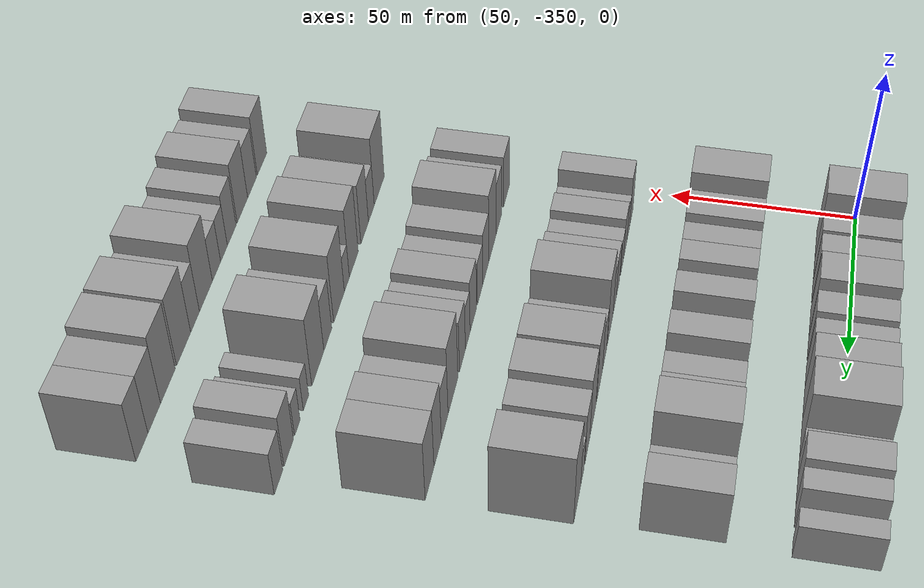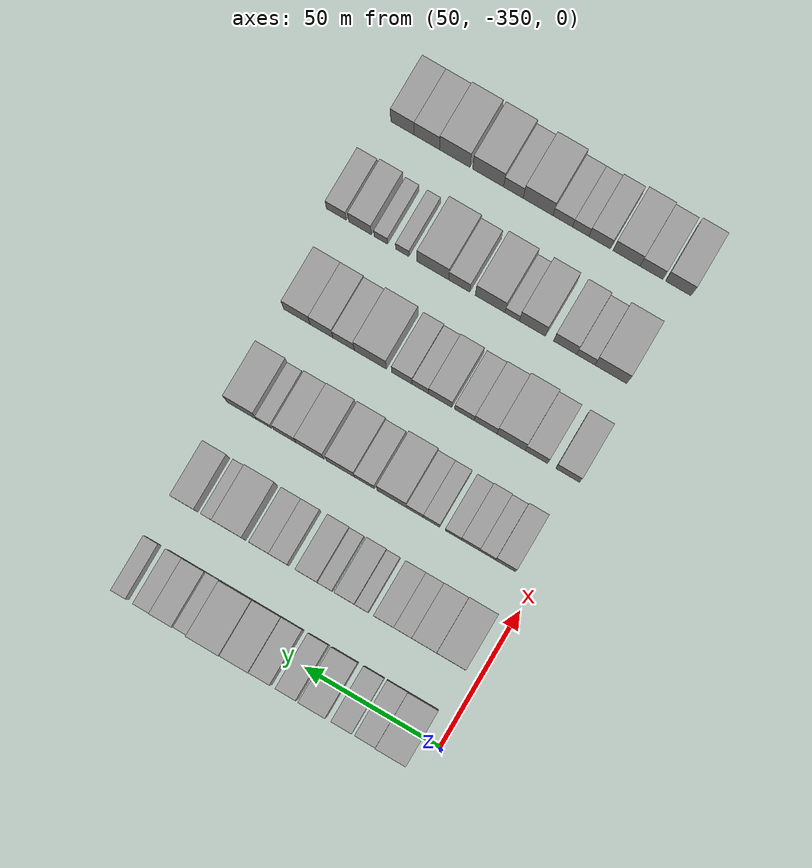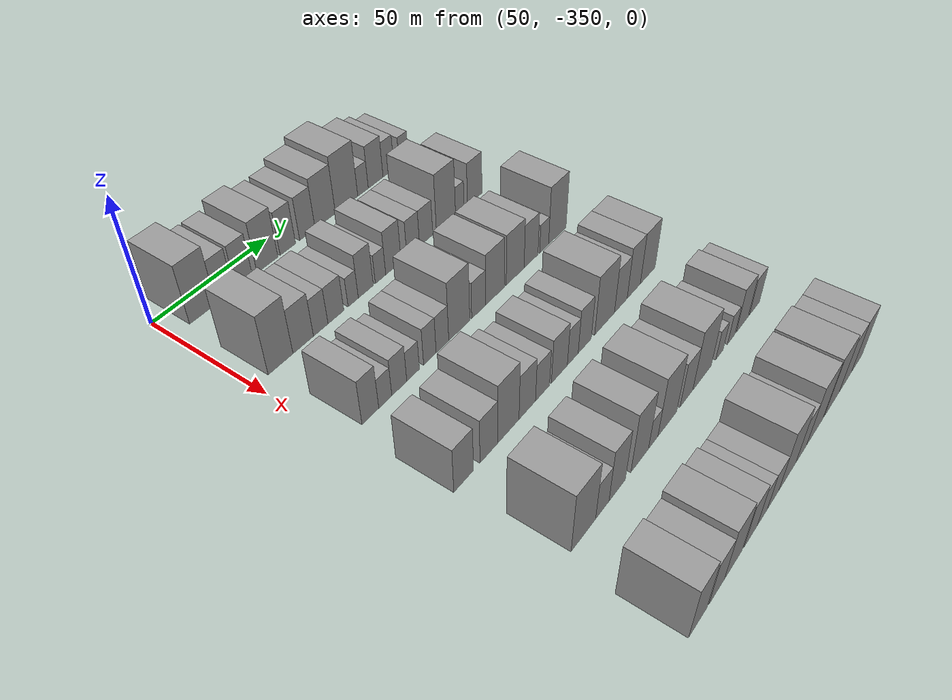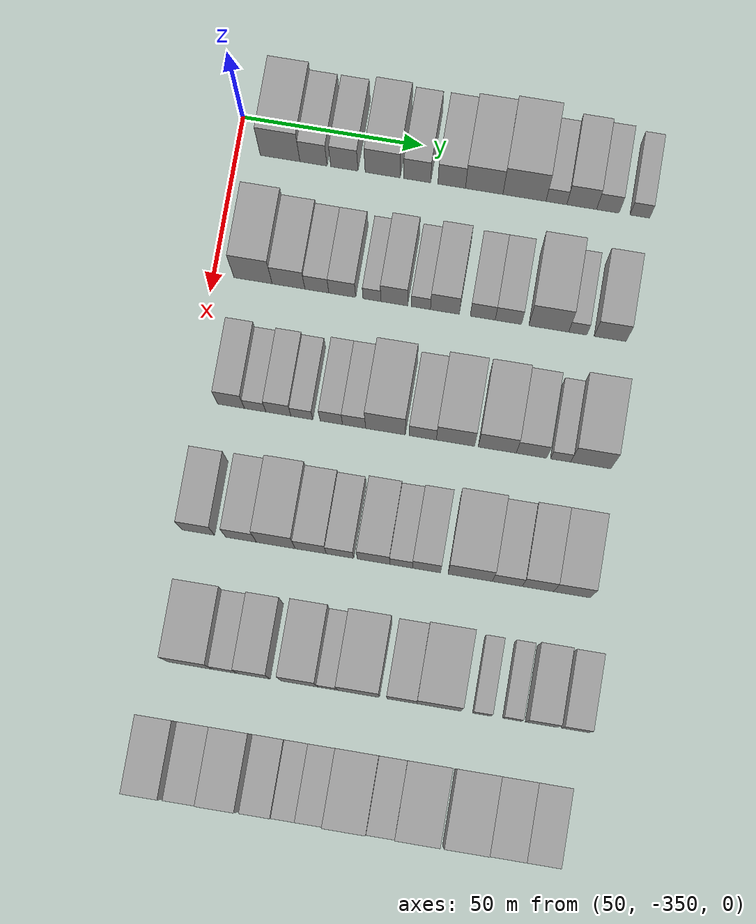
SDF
<sdf version="1.6">
 <world name="default">
  <model name="building_22">
   <static>1</static>
   <pose>50.0000 -337.8677 0 0.000000 0.000000 0.000000</pose>
   <link name="link">
    <pose>0 0 12.00 0 0 0</pose>
    <collision name="collision"><geometry><box><size>20.0000 11.0014 24.0000</size></box></geometry></collision>
    <visual name="visual">
     <cast_shadows>0</cast_shadows>
     <geometry><box><size>20.0000 11.0014 24.0000</size></box></geometry>
     <material>
      <script>
       <uri>model://grey_wall/materials/scripts</uri>
       <uri>model://grey_wall/materials/textures</uri>
       <name>vrc/grey_wall</name>
      </script>
     </material>
    </visual>
   </link>
  </model>
  <model name="building_23">
   <static>1</static>
   <pose>50.0000 -328.5939 0 0.000000 0.000000 0.000000</pose>
   <link name="link">
    <pose>0 0 9.00 0 0 0</pose>
    <collision name="collision"><geometry><box><size>20.0000 7.5461 18.0000</size></box></geometry></collision>
    <visual name="visual">
     <cast_shadows>0</cast_shadows>
     <geometry><box><size>20.0000 7.5461 18.0000</size></box></geometry>
     <material>
      <script>
       <uri>model://grey_wall/materials/scripts</uri>
       <uri>model://grey_wall/materials/textures</uri>
       <name>vrc/grey_wall</name>
      </script>
     </material>
    </visual>
   </link>
  </model>
  <model name="building_24">
   <static>1</static>
   <pose>50.0000 -320.0432 0 0.000000 0.000000 0.000000</pose>
   <link name="link">
    <pose>0 0 9.00 0 0 0</pose>
    <collision name="collision"><geometry><box><size>20.0000 7.5552 18.0000</size></box></geometry></collision>
    <visual name="visual">
     <cast_shadows>0</cast_shadows>
     <geometry><box><size>20.0000 7.5552 18.0000</size></box></geometry>
     <material>
      <script>
       <uri>model://grey_wall/materials/scripts</uri>
       <uri>model://grey_wall/materials/textures</uri>
       <name>vrc/grey_wall</name>
      </script>
     </material>
    </visual>
   </link>
  </model>
  <model name="building_25">
   <static>1</static>
   <pose>50.0000 -309.4065 0 0.000000 0.000000 0.000000</pose>
   <link name="link">
    <pose>0 0 10.50 0 0 0</pose>
    <collision name="collision"><geometry><box><size>20.0000 9.7182 21.0000</size></box></geometry></collision>
    <visual name="visual">
     <cast_shadows>0</cast_shadows>
     <geometry><box><size>20.0000 9.7182 21.0000</size></box></geometry>
     <material>
      <script>
       <uri>model://grey_wall/materials/scripts</uri>
       <uri>model://grey_wall/materials/textures</uri>
       <name>vrc/grey_wall</name>
      </script>
     </material>
    </visual>
   </link>
  </model>
  <model name="building_26">
   <static>1</static>
   <pose>50.0000 -299.8369 0 0.000000 0.000000 0.000000</pose>
   <link name="link">
    <pose>0 0 9.00 0 0 0</pose>
    <collision name="collision"><geometry><box><size>20.0000 7.4212 18.0000</size></box></geometry></collision>
    <visual name="visual">
     <cast_shadows>0</cast_shadows>
     <geometry><box><size>20.0000 7.4212 18.0000</size></box></geometry>
     <material>
      <script>
       <uri>model://grey_wall/materials/scripts</uri>
       <uri>model://grey_wall/materials/textures</uri>
       <name>vrc/grey_wall</name>
      </script>
     </material>
    </visual>
   </link>
  </model>
  <model name="building_27">
   <static>1</static>
   <pose>50.0000 -290.3127 0 0.000000 0.000000 0.000000</pose>
   <link name="link">
    <pose>0 0 9.00 0 0 0</pose>
    <collision name="collision"><geometry><box><size>20.0000 7.6271 18.0000</size></box></geometry></collision>
    <visual name="visual">
     <cast_shadows>0</cast_shadows>
     <geometry><box><size>20.0000 7.6271 18.0000</size></box></geometry>
     <material>
      <script>
       <uri>model://grey_wall/materials/scripts</uri>
       <uri>model://grey_wall/materials/textures</uri>
       <name>vrc/grey_wall</name>
      </script>
     </material>
    </visual>
   </link>
  </model>
  <model name="building_28">
   <static>1</static>
   <pose>50.0000 -281.3289 0 0.000000 0.000000 0.000000</pose>
   <link name="link">
    <pose>0 0 10.50 0 0 0</pose>
    <collision name="collision"><geometry><box><size>20.0000 10.3405 21.0000</size></box></geometry></collision>
    <visual name="visual">
     <cast_shadows>0</cast_shadows>
     <geometry><box><size>20.0000 10.3405 21.0000</size></box></geometry>
     <material>
      <script>
       <uri>model://grey_wall/materials/scripts</uri>
       <uri>model://grey_wall/materials/textures</uri>
       <name>vrc/grey_wall</name>
      </script>
     </material>
    </visual>
   </link>
  </model>
  <model name="building_29">
   <static>1</static>
   <pose>50.0000 -270.2084 0 0.000000 0.000000 0.000000</pose>
   <link name="link">
    <pose>0 0 12.00 0 0 0</pose>
    <collision name="collision"><geometry><box><size>20.0000 11.9004 24.0000</size></box></geometry></collision>
    <visual name="visual">
     <cast_shadows>0</cast_shadows>
     <geometry><box><size>20.0000 11.9004 24.0000</size></box></geometry>
     <material>
      <script>
       <uri>model://grey_wall/materials/scripts</uri>
       <uri>model://grey_wall/materials/textures</uri>
       <name>vrc/grey_wall</name>
      </script>
     </material>
    </visual>
   </link>
  </model>
  <model name="building_30">
   <static>1</static>
   <pose>50.0000 -261.3964 0 0.000000 0.000000 0.000000</pose>
   <link name="link">
    <pose>0 0 6.00 0 0 0</pose>
    <collision name="collision"><geometry><box><size>20.0000 5.7237 12.0000</size></box></geometry></collision>
    <visual name="visual">
     <cast_shadows>0</cast_shadows>
     <geometry><box><size>20.0000 5.7237 12.0000</size></box></geometry>
     <material>
      <script>
       <uri>model://grey_wall/materials/scripts</uri>
       <uri>model://grey_wall/materials/textures</uri>
       <name>vrc/grey_wall</name>
      </script>
     </material>
    </visual>
   </link>
  </model>
  <model name="building_31">
   <static>1</static>
   <pose>50.0000 -254.4233 0 0.000000 0.000000 0.000000</pose>
   <link name="link">
    <pose>0 0 9.00 0 0 0</pose>
    <collision name="collision"><geometry><box><size>20.0000 8.2224 18.0000</size></box></geometry></collision>
    <visual name="visual">
     <cast_shadows>0</cast_shadows>
     <geometry><box><size>20.0000 8.2224 18.0000</size></box></geometry>
     <material>
      <script>
       <uri>model://grey_wall/materials/scripts</uri>
       <uri>model://grey_wall/materials/textures</uri>
       <name>vrc/grey_wall</name>
      </script>
     </material>
    </visual>
   </link>
  </model>
  <model name="building_32">
   <static>1</static>
   <pose>50.0000 -247.2109 0 0.000000 0.000000 0.000000</pose>
   <link name="link">
    <pose>0 0 7.50 0 0 0</pose>
    <collision name="collision"><geometry><box><size>20.0000 6.2025 15.0000</size></box></geometry></collision>
    <visual name="visual">
     <cast_shadows>0</cast_shadows>
     <geometry><box><size>20.0000 6.2025 15.0000</size></box></geometry>
     <material>
      <script>
       <uri>model://grey_wall/materials/scripts</uri>
       <uri>model://grey_wall/materials/textures</uri>
       <name>vrc/grey_wall</name>
      </script>
     </material>
    </visual>
   </link>
  </model>
  <model name="building_33">
   <static>1</static>
   <pose>50.0000 -238.4024 0 0.000000 0.000000 0.000000</pose>
   <link name="link">
    <pose>0 0 6.00 0 0 0</pose>
    <collision name="collision"><geometry><box><size>20.0000 5.4144 12.0000</size></box></geometry></collision>
    <visual name="visual">
     <cast_shadows>0</cast_shadows>
     <geometry><box><size>20.0000 5.4144 12.0000</size></box></geometry>
     <material>
      <script>
       <uri>model://grey_wall/materials/scripts</uri>
       <uri>model://grey_wall/materials/textures</uri>
       <name>vrc/grey_wall</name>
      </script>
     </material>
    </visual>
   </link>
  </model>
  <model name="building_144">
   <static>1</static>
   <pose>85.0000 -339.1189 0 0.000000 0.000000 0.000000</pose>
   <link name="link">
    <pose>0 0 12.00 0 0 0</pose>
    <collision name="collision"><geometry><box><size>20.0000 10.5313 24.0000</size></box></geometry></collision>
    <visual name="visual">
     <cast_shadows>0</cast_shadows>
     <geometry><box><size>20.0000 10.5313 24.0000</size></box></geometry>
     <material>
      <script>
       <uri>model://grey_wall/materials/scripts</uri>
       <uri>model://grey_wall/materials/textures</uri>
       <name>vrc/grey_wall</name>
      </script>
     </material>
    </visual>
   </link>
  </model>
  <model name="building_145">
   <static>1</static>
   <pose>85.0000 -329.3555 0 0.000000 0.000000 0.000000</pose>
   <link name="link">
    <pose>0 0 9.00 0 0 0</pose>
    <collision name="collision"><geometry><box><size>20.0000 8.9957 18.0000</size></box></geometry></collision>
    <visual name="visual">
     <cast_shadows>0</cast_shadows>
     <geometry><box><size>20.0000 8.9957 18.0000</size></box></geometry>
     <material>
      <script>
       <uri>model://grey_wall/materials/scripts</uri>
       <uri>model://grey_wall/materials/textures</uri>
       <name>vrc/grey_wall</name>
      </script>
     </material>
    </visual>
   </link>
  </model>
  <model name="building_146">
   <static>1</static>
   <pose>85.0000 -321.5730 0 0.000000 0.000000 0.000000</pose>
   <link name="link">
    <pose>0 0 7.50 0 0 0</pose>
    <collision name="collision"><geometry><box><size>20.0000 6.5692 15.0000</size></box></geometry></collision>
    <visual name="visual">
     <cast_shadows>0</cast_shadows>
     <geometry><box><size>20.0000 6.5692 15.0000</size></box></geometry>
     <material>
      <script>
       <uri>model://grey_wall/materials/scripts</uri>
       <uri>model://grey_wall/materials/textures</uri>
       <name>vrc/grey_wall</name>
      </script>
     </material>
    </visual>
   </link>
  </model>
  <model name="building_147">
   <static>1</static>
   <pose>85.0000 -314.5998 0 0.000000 0.000000 0.000000</pose>
   <link name="link">
    <pose>0 0 7.50 0 0 0</pose>
    <collision name="collision"><geometry><box><size>20.0000 7.3772 15.0000</size></box></geometry></collision>
    <visual name="visual">
     <cast_shadows>0</cast_shadows>
     <geometry><box><size>20.0000 7.3772 15.0000</size></box></geometry>
     <material>
      <script>
       <uri>model://grey_wall/materials/scripts</uri>
       <uri>model://grey_wall/materials/textures</uri>
       <name>vrc/grey_wall</name>
      </script>
     </material>
    </visual>
   </link>
  </model>
  <model name="building_148">
   <static>1</static>
   <pose>85.0000 -306.4598 0 0.000000 0.000000 0.000000</pose>
   <link name="link">
    <pose>0 0 6.00 0 0 0</pose>
    <collision name="collision"><geometry><box><size>20.0000 4.9028 12.0000</size></box></geometry></collision>
    <visual name="visual">
     <cast_shadows>0</cast_shadows>
     <geometry><box><size>20.0000 4.9028 12.0000</size></box></geometry>
     <material>
      <script>
       <uri>model://grey_wall/materials/scripts</uri>
       <uri>model://grey_wall/materials/textures</uri>
       <name>vrc/grey_wall</name>
      </script>
     </material>
    </visual>
   </link>
  </model>
  <model name="building_149">
   <static>1</static>
   <pose>85.0000 -300.3460 0 0.000000 0.000000 0.000000</pose>
   <link name="link">
    <pose>0 0 9.00 0 0 0</pose>
    <collision name="collision"><geometry><box><size>20.0000 7.3248 18.0000</size></box></geometry></collision>
    <visual name="visual">
     <cast_shadows>0</cast_shadows>
     <geometry><box><size>20.0000 7.3248 18.0000</size></box></geometry>
     <material>
      <script>
       <uri>model://grey_wall/materials/scripts</uri>
       <uri>model://grey_wall/materials/textures</uri>
       <name>vrc/grey_wall</name>
      </script>
     </material>
    </visual>
   </link>
  </model>
  <model name="building_150">
   <static>1</static>
   <pose>85.0000 -293.0568 0 0.000000 0.000000 0.000000</pose>
   <link name="link">
    <pose>0 0 6.00 0 0 0</pose>
    <collision name="collision"><geometry><box><size>20.0000 5.2536 12.0000</size></box></geometry></collision>
    <visual name="visual">
     <cast_shadows>0</cast_shadows>
     <geometry><box><size>20.0000 5.2536 12.0000</size></box></geometry>
     <material>
      <script>
       <uri>model://grey_wall/materials/scripts</uri>
       <uri>model://grey_wall/materials/textures</uri>
       <name>vrc/grey_wall</name>
      </script>
     </material>
    </visual>
   </link>
  </model>
  <model name="building_151">
   <static>1</static>
   <pose>85.0000 -286.4753 0 0.000000 0.000000 0.000000</pose>
   <link name="link">
    <pose>0 0 9.00 0 0 0</pose>
    <collision name="collision"><geometry><box><size>20.0000 7.9094 18.0000</size></box></geometry></collision>
    <visual name="visual">
     <cast_shadows>0</cast_shadows>
     <geometry><box><size>20.0000 7.9094 18.0000</size></box></geometry>
     <material>
      <script>
       <uri>model://grey_wall/materials/scripts</uri>
       <uri>model://grey_wall/materials/textures</uri>
       <name>vrc/grey_wall</name>
      </script>
     </material>
    </visual>
   </link>
  </model>
  <model name="building_152">
   <static>1</static>
   <pose>85.0000 -276.1182 0 0.000000 0.000000 0.000000</pose>
   <link name="link">
    <pose>0 0 7.50 0 0 0</pose>
    <collision name="collision"><geometry><box><size>20.0000 6.8048 15.0000</size></box></geometry></collision>
    <visual name="visual">
     <cast_shadows>0</cast_shadows>
     <geometry><box><size>20.0000 6.8048 15.0000</size></box></geometry>
     <material>
      <script>
       <uri>model://grey_wall/materials/scripts</uri>
       <uri>model://grey_wall/materials/textures</uri>
       <name>vrc/grey_wall</name>
      </script>
     </material>
    </visual>
   </link>
  </model>
  <model name="building_153">
   <static>1</static>
   <pose>85.0000 -269.1102 0 0.000000 0.000000 0.000000</pose>
   <link name="link">
    <pose>0 0 7.50 0 0 0</pose>
    <collision name="collision"><geometry><box><size>20.0000 7.2112 15.0000</size></box></geometry></collision>
    <visual name="visual">
     <cast_shadows>0</cast_shadows>
     <geometry><box><size>20.0000 7.2112 15.0000</size></box></geometry>
     <material>
      <script>
       <uri>model://grey_wall/materials/scripts</uri>
       <uri>model://grey_wall/materials/textures</uri>
       <name>vrc/grey_wall</name>
      </script>
     </material>
    </visual>
   </link>
  </model>
  <model name="building_154">
   <static>1</static>
   <pose>85.0000 -258.0696 0 0.000000 0.000000 0.000000</pose>
   <link name="link">
    <pose>0 0 12.00 0 0 0</pose>
    <collision name="collision"><geometry><box><size>20.0000 10.8700 24.0000</size></box></geometry></collision>
    <visual name="visual">
     <cast_shadows>0</cast_shadows>
     <geometry><box><size>20.0000 10.8700 24.0000</size></box></geometry>
     <material>
      <script>
       <uri>model://grey_wall/materials/scripts</uri>
       <uri>model://grey_wall/materials/textures</uri>
       <name>vrc/grey_wall</name>
      </script>
     </material>
    </visual>
   </link>
  </model>
  <model name="building_155">
   <static>1</static>
   <pose>85.0000 -250.1532 0 0.000000 0.000000 0.000000</pose>
   <link name="link">
    <pose>0 0 6.00 0 0 0</pose>
    <collision name="collision"><geometry><box><size>20.0000 4.9628 12.0000</size></box></geometry></collision>
    <visual name="visual">
     <cast_shadows>0</cast_shadows>
     <geometry><box><size>20.0000 4.9628 12.0000</size></box></geometry>
     <material>
      <script>
       <uri>model://grey_wall/materials/scripts</uri>
       <uri>model://grey_wall/materials/textures</uri>
       <name>vrc/grey_wall</name>
      </script>
     </material>
    </visual>
   </link>
  </model>
  <model name="building_156">
   <static>1</static>
   <pose>85.0000 -241.3069 0 0.000000 0.000000 0.000000</pose>
   <link name="link">
    <pose>0 0 9.00 0 0 0</pose>
    <collision name="collision"><geometry><box><size>20.0000 8.7300 18.0000</size></box></geometry></collision>
    <visual name="visual">
     <cast_shadows>0</cast_shadows>
     <geometry><box><size>20.0000 8.7300 18.0000</size></box></geometry>
     <material>
      <script>
       <uri>model://grey_wall/materials/scripts</uri>
       <uri>model://grey_wall/materials/textures</uri>
       <name>vrc/grey_wall</name>
      </script>
     </material>
    </visual>
   </link>
  </model>
  <model name="building_269">
   <static>1</static>
   <pose>120.0000 -338.8439 0 0.000000 0.000000 0.000000</pose>
   <link name="link">
    <pose>0 0 9.00 0 0 0</pose>
    <collision name="collision"><geometry><box><size>20.0000 7.3104 18.0000</size></box></geometry></collision>
    <visual name="visual">
     <cast_shadows>0</cast_shadows>
     <geometry><box><size>20.0000 7.3104 18.0000</size></box></geometry>
     <material>
      <script>
       <uri>model://grey_wall/materials/scripts</uri>
       <uri>model://grey_wall/materials/textures</uri>
       <name>vrc/grey_wall</name>
      </script>
     </material>
    </visual>
   </link>
  </model>
  <model name="building_270">
   <static>1</static>
   <pose>120.0000 -332.2670 0 0.000000 0.000000 0.000000</pose>
   <link name="link">
    <pose>0 0 6.00 0 0 0</pose>
    <collision name="collision"><geometry><box><size>20.0000 5.8434 12.0000</size></box></geometry></collision>
    <visual name="visual">
     <cast_shadows>0</cast_shadows>
     <geometry><box><size>20.0000 5.8434 12.0000</size></box></geometry>
     <material>
      <script>
       <uri>model://grey_wall/materials/scripts</uri>
       <uri>model://grey_wall/materials/textures</uri>
       <name>vrc/grey_wall</name>
      </script>
     </material>
    </visual>
   </link>
  </model>
  <model name="building_271">
   <static>1</static>
   <pose>120.0000 -325.9289 0 0.000000 0.000000 0.000000</pose>
   <link name="link">
    <pose>0 0 7.50 0 0 0</pose>
    <collision name="collision"><geometry><box><size>20.0000 6.8329 15.0000</size></box></geometry></collision>
    <visual name="visual">
     <cast_shadows>0</cast_shadows>
     <geometry><box><size>20.0000 6.8329 15.0000</size></box></geometry>
     <material>
      <script>
       <uri>model://grey_wall/materials/scripts</uri>
       <uri>model://grey_wall/materials/textures</uri>
       <name>vrc/grey_wall</name>
      </script>
     </material>
    </visual>
   </link>
  </model>
  <model name="building_272">
   <static>1</static>
   <pose>120.0000 -319.5433 0 0.000000 0.000000 0.000000</pose>
   <link name="link">
    <pose>0 0 6.00 0 0 0</pose>
    <collision name="collision"><geometry><box><size>20.0000 5.9383 12.0000</size></box></geometry></collision>
    <visual name="visual">
     <cast_shadows>0</cast_shadows>
     <geometry><box><size>20.0000 5.9383 12.0000</size></box></geometry>
     <material>
      <script>
       <uri>model://grey_wall/materials/scripts</uri>
       <uri>model://grey_wall/materials/textures</uri>
       <name>vrc/grey_wall</name>
      </script>
     </material>
    </visual>
   </link>
  </model>
  <model name="building_273">
   <static>1</static>
   <pose>120.0000 -311.5369 0 0.000000 0.000000 0.000000</pose>
   <link name="link">
    <pose>0 0 7.50 0 0 0</pose>
    <collision name="collision"><geometry><box><size>20.0000 6.0744 15.0000</size></box></geometry></collision>
    <visual name="visual">
     <cast_shadows>0</cast_shadows>
     <geometry><box><size>20.0000 6.0744 15.0000</size></box></geometry>
     <material>
      <script>
       <uri>model://grey_wall/materials/scripts</uri>
       <uri>model://grey_wall/materials/textures</uri>
       <name>vrc/grey_wall</name>
      </script>
     </material>
    </visual>
   </link>
  </model>
  <model name="building_274">
   <static>1</static>
   <pose>120.0000 -305.3656 0 0.000000 0.000000 0.000000</pose>
   <link name="link">
    <pose>0 0 7.50 0 0 0</pose>
    <collision name="collision"><geometry><box><size>20.0000 6.2682 15.0000</size></box></geometry></collision>
    <visual name="visual">
     <cast_shadows>0</cast_shadows>
     <geometry><box><size>20.0000 6.2682 15.0000</size></box></geometry>
     <material>
      <script>
       <uri>model://grey_wall/materials/scripts</uri>
       <uri>model://grey_wall/materials/textures</uri>
       <name>vrc/grey_wall</name>
      </script>
     </material>
    </visual>
   </link>
  </model>
  <model name="building_275">
   <static>1</static>
   <pose>120.0000 -296.8449 0 0.000000 0.000000 0.000000</pose>
   <link name="link">
    <pose>0 0 12.00 0 0 0</pose>
    <collision name="collision"><geometry><box><size>20.0000 10.7731 24.0000</size></box></geometry></collision>
    <visual name="visual">
     <cast_shadows>0</cast_shadows>
     <geometry><box><size>20.0000 10.7731 24.0000</size></box></geometry>
     <material>
      <script>
       <uri>model://grey_wall/materials/scripts</uri>
       <uri>model://grey_wall/materials/textures</uri>
       <name>vrc/grey_wall</name>
      </script>
     </material>
    </visual>
   </link>
  </model>
  <model name="building_276">
   <static>1</static>
   <pose>120.0000 -286.7524 0 0.000000 0.000000 0.000000</pose>
   <link name="link">
    <pose>0 0 7.50 0 0 0</pose>
    <collision name="collision"><geometry><box><size>20.0000 7.4118 15.0000</size></box></geometry></collision>
    <visual name="visual">
     <cast_shadows>0</cast_shadows>
     <geometry><box><size>20.0000 7.4118 15.0000</size></box></geometry>
     <material>
      <script>
       <uri>model://grey_wall/materials/scripts</uri>
       <uri>model://grey_wall/materials/textures</uri>
       <name>vrc/grey_wall</name>
      </script>
     </material>
    </visual>
   </link>
  </model>
  <model name="building_277">
   <static>1</static>
   <pose>120.0000 -277.8801 0 0.000000 0.000000 0.000000</pose>
   <link name="link">
    <pose>0 0 10.50 0 0 0</pose>
    <collision name="collision"><geometry><box><size>20.0000 10.3328 21.0000</size></box></geometry></collision>
    <visual name="visual">
     <cast_shadows>0</cast_shadows>
     <geometry><box><size>20.0000 10.3328 21.0000</size></box></geometry>
     <material>
      <script>
       <uri>model://grey_wall/materials/scripts</uri>
       <uri>model://grey_wall/materials/textures</uri>
       <name>vrc/grey_wall</name>
      </script>
     </material>
    </visual>
   </link>
  </model>
  <model name="building_278">
   <static>1</static>
   <pose>120.0000 -266.5598 0 0.000000 0.000000 0.000000</pose>
   <link name="link">
    <pose>0 0 10.50 0 0 0</pose>
    <collision name="collision"><geometry><box><size>20.0000 10.3079 21.0000</size></box></geometry></collision>
    <visual name="visual">
     <cast_shadows>0</cast_shadows>
     <geometry><box><size>20.0000 10.3079 21.0000</size></box></geometry>
     <material>
      <script>
       <uri>model://grey_wall/materials/scripts</uri>
       <uri>model://grey_wall/materials/textures</uri>
       <name>vrc/grey_wall</name>
      </script>
     </material>
    </visual>
   </link>
  </model>
  <model name="building_279">
   <static>1</static>
   <pose>120.0000 -257.2918 0 0.000000 0.000000 0.000000</pose>
   <link name="link">
    <pose>0 0 9.00 0 0 0</pose>
    <collision name="collision"><geometry><box><size>20.0000 8.2279 18.0000</size></box></geometry></collision>
    <visual name="visual">
     <cast_shadows>0</cast_shadows>
     <geometry><box><size>20.0000 8.2279 18.0000</size></box></geometry>
     <material>
      <script>
       <uri>model://grey_wall/materials/scripts</uri>
       <uri>model://grey_wall/materials/textures</uri>
       <name>vrc/grey_wall</name>
      </script>
     </material>
    </visual>
   </link>
  </model>
  <model name="building_280">
   <static>1</static>
   <pose>120.0000 -249.4496 0 0.000000 0.000000 0.000000</pose>
   <link name="link">
    <pose>0 0 6.00 0 0 0</pose>
    <collision name="collision"><geometry><box><size>20.0000 5.4565 12.0000</size></box></geometry></collision>
    <visual name="visual">
     <cast_shadows>0</cast_shadows>
     <geometry><box><size>20.0000 5.4565 12.0000</size></box></geometry>
     <material>
      <script>
       <uri>model://grey_wall/materials/scripts</uri>
       <uri>model://grey_wall/materials/textures</uri>
       <name>vrc/grey_wall</name>
      </script>
     </material>
    </visual>
   </link>
  </model>
  <model name="building_281">
   <static>1</static>
   <pose>120.0000 -241.2702 0 0.000000 0.000000 0.000000</pose>
   <link name="link">
    <pose>0 0 12.00 0 0 0</pose>
    <collision name="collision"><geometry><box><size>20.0000 10.9023 24.0000</size></box></geometry></collision>
    <visual name="visual">
     <cast_shadows>0</cast_shadows>
     <geometry><box><size>20.0000 10.9023 24.0000</size></box></geometry>
     <material>
      <script>
       <uri>model://grey_wall/materials/scripts</uri>
       <uri>model://grey_wall/materials/textures</uri>
       <name>vrc/grey_wall</name>
      </script>
     </material>
    </visual>
   </link>
  </model>
  <model name="building_389">
   <static>1</static>
   <pose>155.0000 -341.3673 0 0.000000 0.000000 0.000000</pose>
   <link name="link">
    <pose>0 0 9.00 0 0 0</pose>
    <collision name="collision"><geometry><box><size>20.0000 8.7994 18.0000</size></box></geometry></collision>
    <visual name="visual">
     <cast_shadows>0</cast_shadows>
     <geometry><box><size>20.0000 8.7994 18.0000</size></box></geometry>
     <material>
      <script>
       <uri>model://grey_wall/materials/scripts</uri>
       <uri>model://grey_wall/materials/textures</uri>
       <name>vrc/grey_wall</name>
      </script>
     </material>
    </visual>
   </link>
  </model>
  <model name="building_390">
   <static>1</static>
   <pose>155.0000 -329.8161 0 0.000000 0.000000 0.000000</pose>
   <link name="link">
    <pose>0 0 9.00 0 0 0</pose>
    <collision name="collision"><geometry><box><size>20.0000 8.3032 18.0000</size></box></geometry></collision>
    <visual name="visual">
     <cast_shadows>0</cast_shadows>
     <geometry><box><size>20.0000 8.3032 18.0000</size></box></geometry>
     <material>
      <script>
       <uri>model://grey_wall/materials/scripts</uri>
       <uri>model://grey_wall/materials/textures</uri>
       <name>vrc/grey_wall</name>
      </script>
     </material>
    </visual>
   </link>
  </model>
  <model name="building_391">
   <static>1</static>
   <pose>155.0000 -320.4596 0 0.000000 0.000000 0.000000</pose>
   <link name="link">
    <pose>0 0 12.00 0 0 0</pose>
    <collision name="collision"><geometry><box><size>20.0000 10.4098 24.0000</size></box></geometry></collision>
    <visual name="visual">
     <cast_shadows>0</cast_shadows>
     <geometry><box><size>20.0000 10.4098 24.0000</size></box></geometry>
     <material>
      <script>
       <uri>model://grey_wall/materials/scripts</uri>
       <uri>model://grey_wall/materials/textures</uri>
       <name>vrc/grey_wall</name>
      </script>
     </material>
    </visual>
   </link>
  </model>
  <model name="building_392">
   <static>1</static>
   <pose>155.0000 -311.0479 0 0.000000 0.000000 0.000000</pose>
   <link name="link">
    <pose>0 0 9.00 0 0 0</pose>
    <collision name="collision"><geometry><box><size>20.0000 8.4136 18.0000</size></box></geometry></collision>
    <visual name="visual">
     <cast_shadows>0</cast_shadows>
     <geometry><box><size>20.0000 8.4136 18.0000</size></box></geometry>
     <material>
      <script>
       <uri>model://grey_wall/materials/scripts</uri>
       <uri>model://grey_wall/materials/textures</uri>
       <name>vrc/grey_wall</name>
      </script>
     </material>
    </visual>
   </link>
  </model>
  <model name="building_393">
   <static>1</static>
   <pose>155.0000 -303.1639 0 0.000000 0.000000 0.000000</pose>
   <link name="link">
    <pose>0 0 7.50 0 0 0</pose>
    <collision name="collision"><geometry><box><size>20.0000 7.3544 15.0000</size></box></geometry></collision>
    <visual name="visual">
     <cast_shadows>0</cast_shadows>
     <geometry><box><size>20.0000 7.3544 15.0000</size></box></geometry>
     <material>
      <script>
       <uri>model://grey_wall/materials/scripts</uri>
       <uri>model://grey_wall/materials/textures</uri>
       <name>vrc/grey_wall</name>
      </script>
     </material>
    </visual>
   </link>
  </model>
  <model name="building_394">
   <static>1</static>
   <pose>155.0000 -294.1479 0 0.000000 0.000000 0.000000</pose>
   <link name="link">
    <pose>0 0 9.00 0 0 0</pose>
    <collision name="collision"><geometry><box><size>20.0000 8.6775 18.0000</size></box></geometry></collision>
    <visual name="visual">
     <cast_shadows>0</cast_shadows>
     <geometry><box><size>20.0000 8.6775 18.0000</size></box></geometry>
     <material>
      <script>
       <uri>model://grey_wall/materials/scripts</uri>
       <uri>model://grey_wall/materials/textures</uri>
       <name>vrc/grey_wall</name>
      </script>
     </material>
    </visual>
   </link>
  </model>
  <model name="building_395">
   <static>1</static>
   <pose>155.0000 -286.7715 0 0.000000 0.000000 0.000000</pose>
   <link name="link">
    <pose>0 0 7.50 0 0 0</pose>
    <collision name="collision"><geometry><box><size>20.0000 6.0752 15.0000</size></box></geometry></collision>
    <visual name="visual">
     <cast_shadows>0</cast_shadows>
     <geometry><box><size>20.0000 6.0752 15.0000</size></box></geometry>
     <material>
      <script>
       <uri>model://grey_wall/materials/scripts</uri>
       <uri>model://grey_wall/materials/textures</uri>
       <name>vrc/grey_wall</name>
      </script>
     </material>
    </visual>
   </link>
  </model>
  <model name="building_396">
   <static>1</static>
   <pose>155.0000 -279.9626 0 0.000000 0.000000 0.000000</pose>
   <link name="link">
    <pose>0 0 9.00 0 0 0</pose>
    <collision name="collision"><geometry><box><size>20.0000 7.5426 18.0000</size></box></geometry></collision>
    <visual name="visual">
     <cast_shadows>0</cast_shadows>
     <geometry><box><size>20.0000 7.5426 18.0000</size></box></geometry>
     <material>
      <script>
       <uri>model://grey_wall/materials/scripts</uri>
       <uri>model://grey_wall/materials/textures</uri>
       <name>vrc/grey_wall</name>
      </script>
     </material>
    </visual>
   </link>
  </model>
  <model name="building_397">
   <static>1</static>
   <pose>155.0000 -268.2379 0 0.000000 0.000000 0.000000</pose>
   <link name="link">
    <pose>0 0 12.00 0 0 0</pose>
    <collision name="collision"><geometry><box><size>20.0000 11.9066 24.0000</size></box></geometry></collision>
    <visual name="visual">
     <cast_shadows>0</cast_shadows>
     <geometry><box><size>20.0000 11.9066 24.0000</size></box></geometry>
     <material>
      <script>
       <uri>model://grey_wall/materials/scripts</uri>
       <uri>model://grey_wall/materials/textures</uri>
       <name>vrc/grey_wall</name>
      </script>
     </material>
    </visual>
   </link>
  </model>
  <model name="building_398">
   <static>1</static>
   <pose>155.0000 -258.3052 0 0.000000 0.000000 0.000000</pose>
   <link name="link">
    <pose>0 0 9.00 0 0 0</pose>
    <collision name="collision"><geometry><box><size>20.0000 7.9588 18.0000</size></box></geometry></collision>
    <visual name="visual">
     <cast_shadows>0</cast_shadows>
     <geometry><box><size>20.0000 7.9588 18.0000</size></box></geometry>
     <material>
      <script>
       <uri>model://grey_wall/materials/scripts</uri>
       <uri>model://grey_wall/materials/textures</uri>
       <name>vrc/grey_wall</name>
      </script>
     </material>
    </visual>
   </link>
  </model>
  <model name="building_399">
   <static>1</static>
   <pose>155.0000 -250.0890 0 0.000000 0.000000 0.000000</pose>
   <link name="link">
    <pose>0 0 10.50 0 0 0</pose>
    <collision name="collision"><geometry><box><size>20.0000 8.4737 21.0000</size></box></geometry></collision>
    <visual name="visual">
     <cast_shadows>0</cast_shadows>
     <geometry><box><size>20.0000 8.4737 21.0000</size></box></geometry>
     <material>
      <script>
       <uri>model://grey_wall/materials/scripts</uri>
       <uri>model://grey_wall/materials/textures</uri>
       <name>vrc/grey_wall</name>
      </script>
     </material>
    </visual>
   </link>
  </model>
  <model name="building_400">
   <static>1</static>
   <pose>155.0000 -240.9538 0 0.000000 0.000000 0.000000</pose>
   <link name="link">
    <pose>0 0 10.50 0 0 0</pose>
    <collision name="collision"><geometry><box><size>20.0000 9.7966 21.0000</size></box></geometry></collision>
    <visual name="visual">
     <cast_shadows>0</cast_shadows>
     <geometry><box><size>20.0000 9.7966 21.0000</size></box></geometry>
     <material>
      <script>
       <uri>model://grey_wall/materials/scripts</uri>
       <uri>model://grey_wall/materials/textures</uri>
       <name>vrc/grey_wall</name>
      </script>
     </material>
    </visual>
   </link>
  </model>
  <model name="building_513">
   <static>1</static>
   <pose>190.0000 -336.9763 0 0.000000 0.000000 0.000000</pose>
   <link name="link">
    <pose>0 0 12.00 0 0 0</pose>
    <collision name="collision"><geometry><box><size>20.0000 11.8254 24.0000</size></box></geometry></collision>
    <visual name="visual">
     <cast_shadows>0</cast_shadows>
     <geometry><box><size>20.0000 11.8254 24.0000</size></box></geometry>
     <material>
      <script>
       <uri>model://grey_wall/materials/scripts</uri>
       <uri>model://grey_wall/materials/textures</uri>
       <name>vrc/grey_wall</name>
      </script>
     </material>
    </visual>
   </link>
  </model>
  <model name="building_514">
   <static>1</static>
   <pose>190.0000 -327.6918 0 0.000000 0.000000 0.000000</pose>
   <link name="link">
    <pose>0 0 7.50 0 0 0</pose>
    <collision name="collision"><geometry><box><size>20.0000 6.7437 15.0000</size></box></geometry></collision>
    <visual name="visual">
     <cast_shadows>0</cast_shadows>
     <geometry><box><size>20.0000 6.7437 15.0000</size></box></geometry>
     <material>
      <script>
       <uri>model://grey_wall/materials/scripts</uri>
       <uri>model://grey_wall/materials/textures</uri>
       <name>vrc/grey_wall</name>
      </script>
     </material>
    </visual>
   </link>
  </model>
  <model name="building_515">
   <static>1</static>
   <pose>190.0000 -320.0452 0 0.000000 0.000000 0.000000</pose>
   <link name="link">
    <pose>0 0 10.50 0 0 0</pose>
    <collision name="collision"><geometry><box><size>20.0000 8.5494 21.0000</size></box></geometry></collision>
    <visual name="visual">
     <cast_shadows>0</cast_shadows>
     <geometry><box><size>20.0000 8.5494 21.0000</size></box></geometry>
     <material>
      <script>
       <uri>model://grey_wall/materials/scripts</uri>
       <uri>model://grey_wall/materials/textures</uri>
       <name>vrc/grey_wall</name>
      </script>
     </material>
    </visual>
   </link>
  </model>
  <model name="building_516">
   <static>1</static>
   <pose>190.0000 -307.9288 0 0.000000 0.000000 0.000000</pose>
   <link name="link">
    <pose>0 0 12.00 0 0 0</pose>
    <collision name="collision"><geometry><box><size>20.0000 9.6834 24.0000</size></box></geometry></collision>
    <visual name="visual">
     <cast_shadows>0</cast_shadows>
     <geometry><box><size>20.0000 9.6834 24.0000</size></box></geometry>
     <material>
      <script>
       <uri>model://grey_wall/materials/scripts</uri>
       <uri>model://grey_wall/materials/textures</uri>
       <name>vrc/grey_wall</name>
      </script>
     </material>
    </visual>
   </link>
  </model>
  <model name="building_517">
   <static>1</static>
   <pose>190.0000 -300.4158 0 0.000000 0.000000 0.000000</pose>
   <link name="link">
    <pose>0 0 6.00 0 0 0</pose>
    <collision name="collision"><geometry><box><size>20.0000 5.3426 12.0000</size></box></geometry></collision>
    <visual name="visual">
     <cast_shadows>0</cast_shadows>
     <geometry><box><size>20.0000 5.3426 12.0000</size></box></geometry>
     <material>
      <script>
       <uri>model://grey_wall/materials/scripts</uri>
       <uri>model://grey_wall/materials/textures</uri>
       <name>vrc/grey_wall</name>
      </script>
     </material>
    </visual>
   </link>
  </model>
  <model name="building_518">
   <static>1</static>
   <pose>190.0000 -292.2043 0 0.000000 0.000000 0.000000</pose>
   <link name="link">
    <pose>0 0 12.00 0 0 0</pose>
    <collision name="collision"><geometry><box><size>20.0000 11.0804 24.0000</size></box></geometry></collision>
    <visual name="visual">
     <cast_shadows>0</cast_shadows>
     <geometry><box><size>20.0000 11.0804 24.0000</size></box></geometry>
     <material>
      <script>
       <uri>model://grey_wall/materials/scripts</uri>
       <uri>model://grey_wall/materials/textures</uri>
       <name>vrc/grey_wall</name>
      </script>
     </material>
    </visual>
   </link>
  </model>
  <model name="building_519">
   <static>1</static>
   <pose>190.0000 -280.7232 0 0.000000 0.000000 0.000000</pose>
   <link name="link">
    <pose>0 0 9.00 0 0 0</pose>
    <collision name="collision"><geometry><box><size>20.0000 7.8818 18.0000</size></box></geometry></collision>
    <visual name="visual">
     <cast_shadows>0</cast_shadows>
     <geometry><box><size>20.0000 7.8818 18.0000</size></box></geometry>
     <material>
      <script>
       <uri>model://grey_wall/materials/scripts</uri>
       <uri>model://grey_wall/materials/textures</uri>
       <name>vrc/grey_wall</name>
      </script>
     </material>
    </visual>
   </link>
  </model>
  <model name="building_520">
   <static>1</static>
   <pose>190.0000 -270.8734 0 0.000000 0.000000 0.000000</pose>
   <link name="link">
    <pose>0 0 12.00 0 0 0</pose>
    <collision name="collision"><geometry><box><size>20.0000 11.8179 24.0000</size></box></geometry></collision>
    <visual name="visual">
     <cast_shadows>0</cast_shadows>
     <geometry><box><size>20.0000 11.8179 24.0000</size></box></geometry>
     <material>
      <script>
       <uri>model://grey_wall/materials/scripts</uri>
       <uri>model://grey_wall/materials/textures</uri>
       <name>vrc/grey_wall</name>
      </script>
     </material>
    </visual>
   </link>
  </model>
  <model name="building_521">
   <static>1</static>
   <pose>190.0000 -259.4842 0 0.000000 0.000000 0.000000</pose>
   <link name="link">
    <pose>0 0 6.00 0 0 0</pose>
    <collision name="collision"><geometry><box><size>20.0000 4.9604 12.0000</size></box></geometry></collision>
    <visual name="visual">
     <cast_shadows>0</cast_shadows>
     <geometry><box><size>20.0000 4.9604 12.0000</size></box></geometry>
     <material>
      <script>
       <uri>model://grey_wall/materials/scripts</uri>
       <uri>model://grey_wall/materials/textures</uri>
       <name>vrc/grey_wall</name>
      </script>
     </material>
    </visual>
   </link>
  </model>
  <model name="building_522">
   <static>1</static>
   <pose>190.0000 -251.4863 0 0.000000 0.000000 0.000000</pose>
   <link name="link">
    <pose>0 0 6.00 0 0 0</pose>
    <collision name="collision"><geometry><box><size>20.0000 5.0355 12.0000</size></box></geometry></collision>
    <visual name="visual">
     <cast_shadows>0</cast_shadows>
     <geometry><box><size>20.0000 5.0355 12.0000</size></box></geometry>
     <material>
      <script>
       <uri>model://grey_wall/materials/scripts</uri>
       <uri>model://grey_wall/materials/textures</uri>
       <name>vrc/grey_wall</name>
      </script>
     </material>
    </visual>
   </link>
  </model>
  <model name="building_523">
   <static>1</static>
   <pose>190.0000 -243.7464 0 0.000000 0.000000 0.000000</pose>
   <link name="link">
    <pose>0 0 9.00 0 0 0</pose>
    <collision name="collision"><geometry><box><size>20.0000 8.4443 18.0000</size></box></geometry></collision>
    <visual name="visual">
     <cast_shadows>0</cast_shadows>
     <geometry><box><size>20.0000 8.4443 18.0000</size></box></geometry>
     <material>
      <script>
       <uri>model://grey_wall/materials/scripts</uri>
       <uri>model://grey_wall/materials/textures</uri>
       <name>vrc/grey_wall</name>
      </script>
     </material>
    </visual>
   </link>
  </model>
  <model name="building_524">
   <static>1</static>
   <pose>190.0000 -234.8457 0 0.000000 0.000000 0.000000</pose>
   <link name="link">
    <pose>0 0 7.50 0 0 0</pose>
    <collision name="collision"><geometry><box><size>20.0000 7.3573 15.0000</size></box></geometry></collision>
    <visual name="visual">
     <cast_shadows>0</cast_shadows>
     <geometry><box><size>20.0000 7.3573 15.0000</size></box></geometry>
     <material>
      <script>
       <uri>model://grey_wall/materials/scripts</uri>
       <uri>model://grey_wall/materials/textures</uri>
       <name>vrc/grey_wall</name>
      </script>
     </material>
    </visual>
   </link>
  </model>
  <model name="building_647">
   <static>1</static>
   <pose>225.0000 -341.7278 0 0.000000 0.000000 0.000000</pose>
   <link name="link">
    <pose>0 0 10.50 0 0 0</pose>
    <collision name="collision"><geometry><box><size>20.0000 9.4657 21.0000</size></box></geometry></collision>
    <visual name="visual">
     <cast_shadows>0</cast_shadows>
     <geometry><box><size>20.0000 9.4657 21.0000</size></box></geometry>
     <material>
      <script>
       <uri>model://grey_wall/materials/scripts</uri>
       <uri>model://grey_wall/materials/textures</uri>
       <name>vrc/grey_wall</name>
      </script>
     </material>
    </visual>
   </link>
  </model>
  <model name="building_648">
   <static>1</static>
   <pose>225.0000 -331.7716 0 0.000000 0.000000 0.000000</pose>
   <link name="link">
    <pose>0 0 9.00 0 0 0</pose>
    <collision name="collision"><geometry><box><size>20.0000 8.4467 18.0000</size></box></geometry></collision>
    <visual name="visual">
     <cast_shadows>0</cast_shadows>
     <geometry><box><size>20.0000 8.4467 18.0000</size></box></geometry>
     <material>
      <script>
       <uri>model://grey_wall/materials/scripts</uri>
       <uri>model://grey_wall/materials/textures</uri>
       <name>vrc/grey_wall</name>
      </script>
     </material>
    </visual>
   </link>
  </model>
  <model name="building_649">
   <static>1</static>
   <pose>225.0000 -322.5360 0 0.000000 0.000000 0.000000</pose>
   <link name="link">
    <pose>0 0 10.50 0 0 0</pose>
    <collision name="collision"><geometry><box><size>20.0000 10.0243 21.0000</size></box></geometry></collision>
    <visual name="visual">
     <cast_shadows>0</cast_shadows>
     <geometry><box><size>20.0000 10.0243 21.0000</size></box></geometry>
     <material>
      <script>
       <uri>model://grey_wall/materials/scripts</uri>
       <uri>model://grey_wall/materials/textures</uri>
       <name>vrc/grey_wall</name>
      </script>
     </material>
    </visual>
   </link>
  </model>
  <model name="building_650">
   <static>1</static>
   <pose>225.0000 -312.5473 0 0.000000 0.000000 0.000000</pose>
   <link name="link">
    <pose>0 0 9.00 0 0 0</pose>
    <collision name="collision"><geometry><box><size>20.0000 7.9531 18.0000</size></box></geometry></collision>
    <visual name="visual">
     <cast_shadows>0</cast_shadows>
     <geometry><box><size>20.0000 7.9531 18.0000</size></box></geometry>
     <material>
      <script>
       <uri>model://grey_wall/materials/scripts</uri>
       <uri>model://grey_wall/materials/textures</uri>
       <name>vrc/grey_wall</name>
      </script>
     </material>
    </visual>
   </link>
  </model>
  <model name="building_651">
   <static>1</static>
   <pose>225.0000 -305.5125 0 0.000000 0.000000 0.000000</pose>
   <link name="link">
    <pose>0 0 7.50 0 0 0</pose>
    <collision name="collision"><geometry><box><size>20.0000 6.1165 15.0000</size></box></geometry></collision>
    <visual name="visual">
     <cast_shadows>0</cast_shadows>
     <geometry><box><size>20.0000 6.1165 15.0000</size></box></geometry>
     <material>
      <script>
       <uri>model://grey_wall/materials/scripts</uri>
       <uri>model://grey_wall/materials/textures</uri>
       <name>vrc/grey_wall</name>
      </script>
     </material>
    </visual>
   </link>
  </model>
  <model name="building_652">
   <static>1</static>
   <pose>225.0000 -298.8051 0 0.000000 0.000000 0.000000</pose>
   <link name="link">
    <pose>0 0 7.50 0 0 0</pose>
    <collision name="collision"><geometry><box><size>20.0000 7.2984 15.0000</size></box></geometry></collision>
    <visual name="visual">
     <cast_shadows>0</cast_shadows>
     <geometry><box><size>20.0000 7.2984 15.0000</size></box></geometry>
     <material>
      <script>
       <uri>model://grey_wall/materials/scripts</uri>
       <uri>model://grey_wall/materials/textures</uri>
       <name>vrc/grey_wall</name>
      </script>
     </material>
    </visual>
   </link>
  </model>
  <model name="building_653">
   <static>1</static>
   <pose>225.0000 -289.5917 0 0.000000 0.000000 0.000000</pose>
   <link name="link">
    <pose>0 0 12.00 0 0 0</pose>
    <collision name="collision"><geometry><box><size>20.0000 11.1285 24.0000</size></box></geometry></collision>
    <visual name="visual">
     <cast_shadows>0</cast_shadows>
     <geometry><box><size>20.0000 11.1285 24.0000</size></box></geometry>
     <material>
      <script>
       <uri>model://grey_wall/materials/scripts</uri>
       <uri>model://grey_wall/materials/textures</uri>
       <name>vrc/grey_wall</name>
      </script>
     </material>
    </visual>
   </link>
  </model>
  <model name="building_654">
   <static>1</static>
   <pose>225.0000 -280.3775 0 0.000000 0.000000 0.000000</pose>
   <link name="link">
    <pose>0 0 9.00 0 0 0</pose>
    <collision name="collision"><geometry><box><size>20.0000 7.2998 18.0000</size></box></geometry></collision>
    <visual name="visual">
     <cast_shadows>0</cast_shadows>
     <geometry><box><size>20.0000 7.2998 18.0000</size></box></geometry>
     <material>
      <script>
       <uri>model://grey_wall/materials/scripts</uri>
       <uri>model://grey_wall/materials/textures</uri>
       <name>vrc/grey_wall</name>
      </script>
     </material>
    </visual>
   </link>
  </model>
  <model name="building_655">
   <static>1</static>
   <pose>225.0000 -270.9643 0 0.000000 0.000000 0.000000</pose>
   <link name="link">
    <pose>0 0 12.00 0 0 0</pose>
    <collision name="collision"><geometry><box><size>20.0000 11.5266 24.0000</size></box></geometry></collision>
    <visual name="visual">
     <cast_shadows>0</cast_shadows>
     <geometry><box><size>20.0000 11.5266 24.0000</size></box></geometry>
     <material>
      <script>
       <uri>model://grey_wall/materials/scripts</uri>
       <uri>model://grey_wall/materials/textures</uri>
       <name>vrc/grey_wall</name>
      </script>
     </material>
    </visual>
   </link>
  </model>
  <model name="building_656">
   <static>1</static>
   <pose>225.0000 -258.4935 0 0.000000 0.000000 0.000000</pose>
   <link name="link">
    <pose>0 0 12.00 0 0 0</pose>
    <collision name="collision"><geometry><box><size>20.0000 11.4151 24.0000</size></box></geometry></collision>
    <visual name="visual">
     <cast_shadows>0</cast_shadows>
     <geometry><box><size>20.0000 11.4151 24.0000</size></box></geometry>
     <material>
      <script>
       <uri>model://grey_wall/materials/scripts</uri>
       <uri>model://grey_wall/materials/textures</uri>
       <name>vrc/grey_wall</name>
      </script>
     </material>
    </visual>
   </link>
  </model>
  <model name="building_657">
   <static>1</static>
   <pose>225.0000 -248.0324 0 0.000000 0.000000 0.000000</pose>
   <link name="link">
    <pose>0 0 10.50 0 0 0</pose>
    <collision name="collision"><geometry><box><size>20.0000 9.5070 21.0000</size></box></geometry></collision>
    <visual name="visual">
     <cast_shadows>0</cast_shadows>
     <geometry><box><size>20.0000 9.5070 21.0000</size></box></geometry>
     <material>
      <script>
       <uri>model://grey_wall/materials/scripts</uri>
       <uri>model://grey_wall/materials/textures</uri>
       <name>vrc/grey_wall</name>
      </script>
     </material>
    </visual>
   </link>
  </model>
  <model name="building_658">
   <static>1</static>
   <pose>225.0000 -238.9188 0 0.000000 0.000000 0.000000</pose>
   <link name="link">
    <pose>0 0 10.50 0 0 0</pose>
    <collision name="collision"><geometry><box><size>20.0000 8.7202 21.0000</size></box></geometry></collision>
    <visual name="visual">
     <cast_shadows>0</cast_shadows>
     <geometry><box><size>20.0000 8.7202 21.0000</size></box></geometry>
     <material>
      <script>
       <uri>model://grey_wall/materials/scripts</uri>
       <uri>model://grey_wall/materials/textures</uri>
       <name>vrc/grey_wall</name>
      </script>
     </material>
    </visual>
   </link>
  </model>
 </world>
</sdf>
